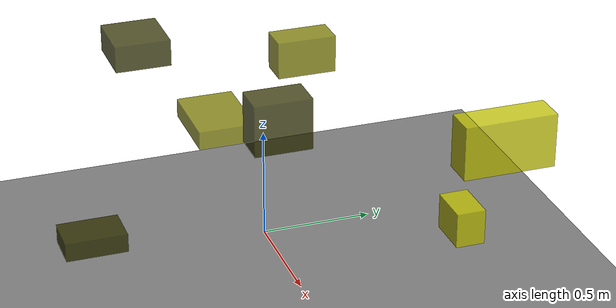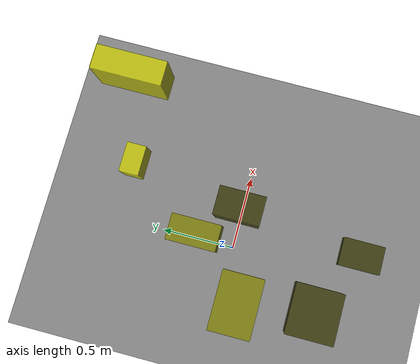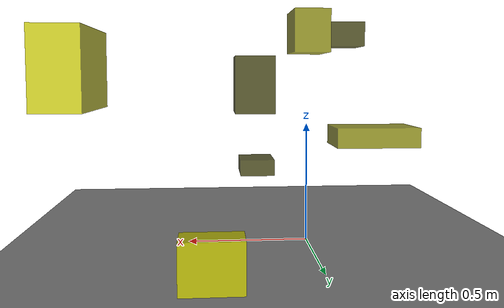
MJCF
<?xml version="1.0"?>
<mujoco model="obstacle_scene">
  <compiler angle="radian" coordinate="local"/>
  <option timestep="0.001" gravity="0 0 -9.81"/>

  <asset>
    <material name="obstacle_mat" rgba="0.8 0.8 0.0 0.8"/>
    <material name="ground_mat" rgba="0.5 0.5 0.5 1"/>
  </asset>

  <worldbody>
    <!-- Ground plane -->
    <geom name="ground" type="plane" size="3 3 0.1" material="ground_mat"/>

    <!-- Obstacles -->
    <body name="obstacle_0" pos="0.160998 -0.825212 0.211589">
      <geom name="obs_0" type="box" size="0.091171 0.135344 0.041922" rgba="0.2 0.2 0.0 0.8"/>
    </body>
    <body name="obstacle_1" pos="-0.319641 -0.122662 0.436087">
      <geom name="obs_1" type="box" size="0.182325 0.130619 0.042983" rgba="0.5 0.5 0.0 0.8"/>
    </body>
    <body name="obstacle_2" pos="0.809919 0.776428 0.723639">
      <geom name="obs_2" type="box" size="0.070609 0.202413 0.119277" rgba="0.8 0.8 0.0 0.8"/>
    </body>
    <body name="obstacle_3" pos="0.224169 -0.006358 0.668445">
      <geom name="obs_3" type="box" size="0.081298 0.130691 0.118055" rgba="0.2 0.2 0.0 0.8"/>
    </body>
    <body name="obstacle_4" pos="0.019150 0.173681 0.876683">
      <geom name="obs_4" type="box" size="0.068393 0.128971 0.082261" rgba="0.5 0.5 0.0 0.8"/>
    </body>
    <body name="obstacle_5" pos="0.401385 0.791937 0.136729">
      <geom name="obs_5" type="box" size="0.102048 0.066349 0.082303" rgba="0.8 0.8 0.0 0.8"/>
    </body>
    <body name="obstacle_6" pos="-0.213338 -0.505996 0.908289">
      <geom name="obs_6" type="box" size="0.127865 0.121939 0.058853" rgba="0.2 0.2 0.0 0.8"/>
    </body>
  </worldbody>
</mujoco>
